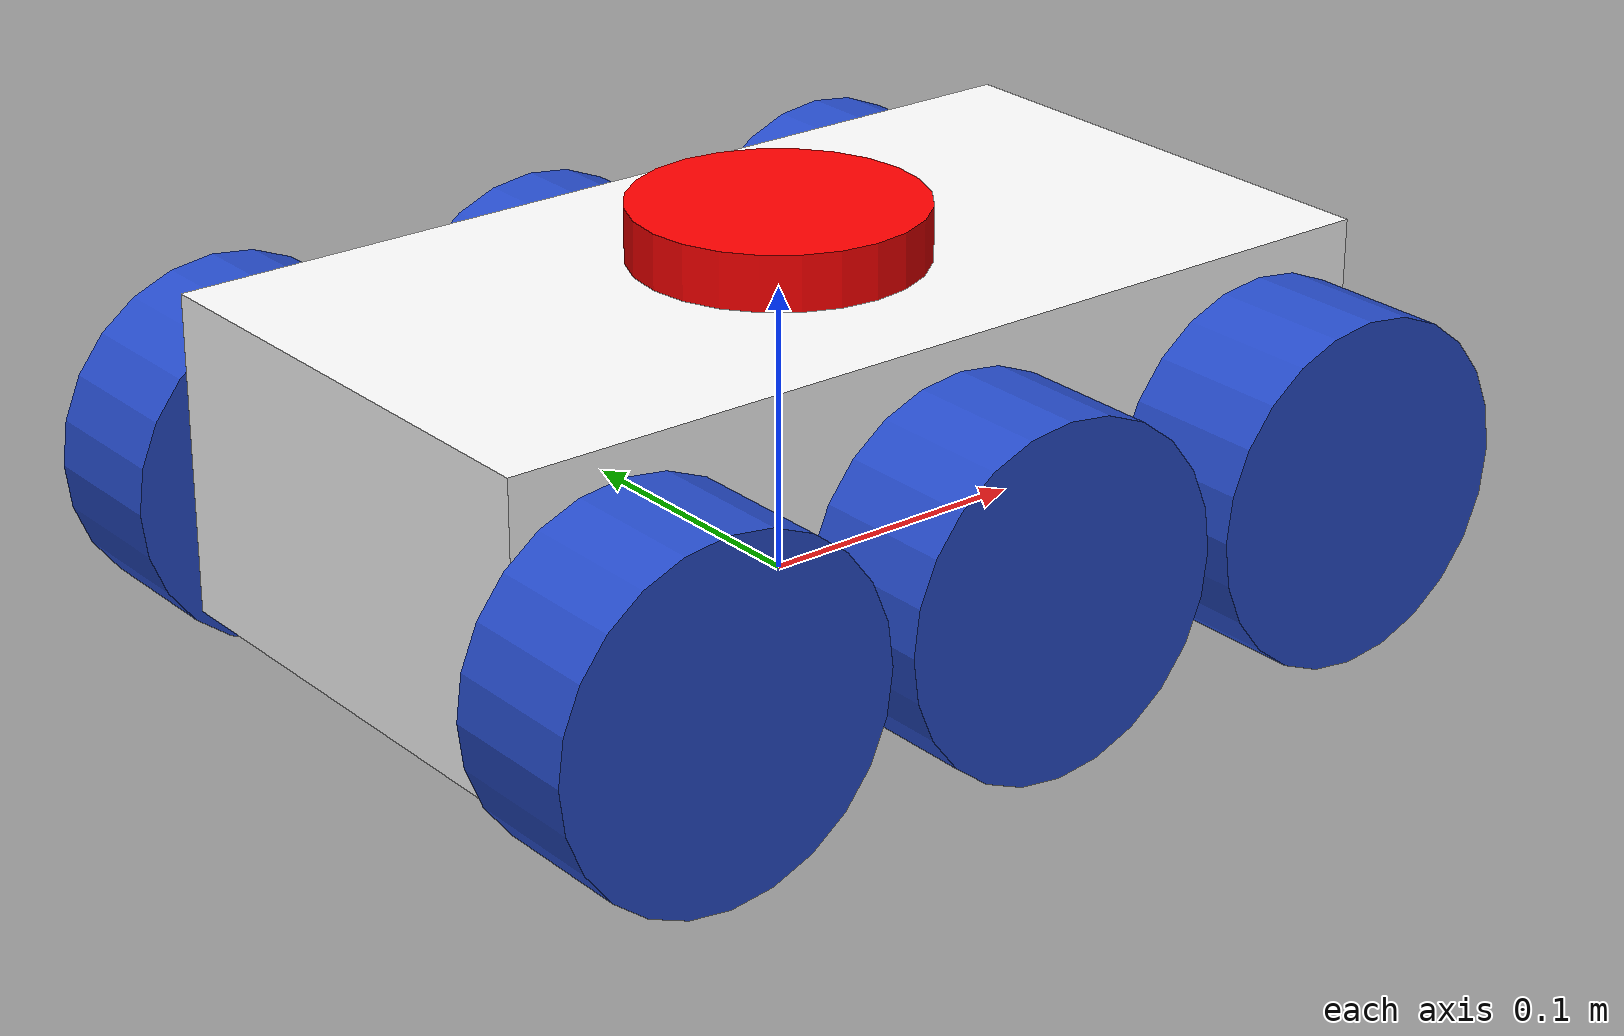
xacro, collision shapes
<?xml version="1.0"?>
<robot xmlns:xacro="http://www.ros.org/wiki/xacro"  name="robot">

    <xacro:arg name="use_ros2_control" default="true"/>
    <xacro:arg name="sim_mode" default="false"/>

    <xacro:include filename="robot_core.xacro" />

    <xacro:if value="$(arg use_ros2_control)">
        <xacro:include filename="ros2_control.xacro" />
    </xacro:if>

    <xacro:include filename="lidar.xacro" />
    <xacro:include filename="depth_camera.xacro" />
</robot>

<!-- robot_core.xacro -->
<robot xmlns:xacro="http://www.ros.org/wiki/xacro" >

    <xacro:include filename="inertial_macros.xacro"/>
    <xacro:property name="sum_mass" value="20.0"/>
    <xacro:property name="chassis_mass" value="17.0"/>
    <xacro:property name="track_mass" value="3"/>
    <xacro:property name="wheel_mass" value="${track_mass/3}"/>

    <xacro:property name="min_depth" value="0.001"/>
    <xacro:property name="mu1" value="0.7"/>
    <xacro:property name="mu2" value="0.7"/>
    <xacro:property name="kp" value="1000000"/>

<!-- MATERIALS -->

    <material name="white">
        <color rgba="1 1 1 1" />
    </material>

    <material name="orange">
        <color rgba="1 0.3 0.1 1"/>
    </material>

    <material name="blue">
        <color rgba="0.2 0.2 1 1"/>
    </material>

    <material name="black">
        <color rgba="0 0 0 1"/>
    </material>

    <material name="red">
        <color rgba="1 0 0 1"/>
    </material>

<!-- BASE LINK -->

    <link name="base_link">

    </link>

<!-- BASE_FOOTPRINT LINK -->

    <joint name="base_footprint_joint" type="fixed">
        <parent link="base_link"/>
        <child link="base_footprint"/>
        <origin xyz="0 0 0" rpy="0 0 0"/>
    </joint>

    <link name="base_footprint">
    </link>

<!-- CHASSIS LINK -->

    <joint name="chassis_joint" type="fixed">
        <parent link="base_link"/>
        <child link="chassis"/>
        <origin xyz="0 0 0" rpy="0 0 0"/>
    </joint>

    <link name="chassis">
        <visual>
            <origin xyz="0 0 0" rpy="0 0 ${pi}"/>
            <geometry>
                <mesh filename="file://$(find test_bot)/meshes/2-Chassis.stl" />
            </geometry>
            <material name="white"/>
        </visual>
        <collision>
            <origin xyz="0 0 0.0555"/>
            <geometry>
                <box size="0.336 0.18 0.111"/>
            </geometry>
        </collision>
        <xacro:inertial_box mass="${chassis_mass}" x="0.336" y="0.18" z="0.111">
            <origin xyz="0 0 0.0555" rpy="0 0 0"/>
        </xacro:inertial_box>
    </link>

    <gazebo reference="chassis">
        <material>Gazebo/White</material>
    </gazebo>

<!-- LEFT WHEEL 1 LINK -->

    <joint name="left_wheel1_joint" type="continuous">
        <parent link="base_link"/>
        <child link="left_wheel1"/>
        <origin xyz="0.128 0.115 0.04" rpy="-${pi/2} 0 0" />
        <axis xyz="0 0 1"/>
    </joint>

    <link name="left_wheel1">
        <collision>
            <geometry>
                <cylinder radius="0.06" length="0.05"/>
            </geometry>
        </collision>
        <xacro:inertial_cylinder mass="${wheel_mass}" radius="0.06" length="0.05">
            <origin xyz="0 0 0" rpy="0 0 0"/>
        </xacro:inertial_cylinder>
    </link>

    <gazebo reference="left_wheel1">
        <material>Gazebo/Blue</material>
        <min_depth value="${min_depth}"></min_depth>
        <mu1 value="${mu1}"></mu1>
        <mu2 value="${mu2}"></mu2>
        <kp value="${kp}"></kp>

    </gazebo>

<!-- LEFT WHEEL 2 LINK -->

    <joint name="left_wheel2_joint" type="continuous">
        <parent link="base_link"/>
        <child link="left_wheel2"/>
        <origin xyz="0 0.115 0.04" rpy="-${pi/2} 0 0" />
        <axis xyz="0 0 1"/>
    </joint>

    <link name="left_wheel2">
        <collision>
            <geometry>
                <cylinder radius="0.06" length="0.05"/>
            </geometry>
        </collision>
        <xacro:inertial_cylinder mass="${wheel_mass}" length="0.05" radius="0.06">
            <origin xyz="0 0 0" rpy="0 0 0"/>
        </xacro:inertial_cylinder>
    </link>

    <gazebo reference="left_wheel2">
        <material>Gazebo/Blue</material>

        <min_depth value="${min_depth}"></min_depth>
        <mu1 value="${mu1}"></mu1>
        <mu2 value="${mu2}"></mu2>
        <kp value="${kp}"></kp>

    </gazebo>

<!-- LEFT WHEEL 3 LINK -->

    <joint name="left_wheel3_joint" type="continuous">
        <parent link="base_link"/>
        <child link="left_wheel3"/>
        <origin xyz="-0.128 0.115 0.04" rpy="-${pi/2} 0 0" />
        <axis xyz="0 0 1"/>
    </joint>

    <link name="left_wheel3">
        <collision>
            <geometry>
                <cylinder radius="0.06" length="0.05"/>
            </geometry>
        </collision>
        <xacro:inertial_cylinder mass="${wheel_mass}" length="0.05" radius="0.06">
            <origin xyz="0 0 0" rpy="0 0 0"/>
        </xacro:inertial_cylinder>
    </link>

    <gazebo reference="left_wheel3">
        <material>Gazebo/Blue</material>

        <min_depth value="${min_depth}"></min_depth>
        <mu1 value="${mu1}"></mu1>
        <mu2 value="${mu2}"></mu2>
        <kp value="${kp}"></kp>

    </gazebo>

<!-- RIGHT WHEEL 1 LINK -->

    <joint name="right_wheel1_joint" type="continuous">
        <parent link="base_link"/>
        <child link="right_wheel1"/>
        <origin xyz="0.128 -0.115 0.04" rpy="-${pi/2} 0 0" />
        <axis xyz="0 0 1"/>
    </joint>

    <link name="right_wheel1">
        <collision>
            <geometry>
                <cylinder radius="0.06" length="0.05"/>
            </geometry>
        </collision>
        <xacro:inertial_cylinder mass="${wheel_mass}" length="0.05" radius="0.06">
            <origin xyz="0 0 0" rpy="0 0 0"/>
        </xacro:inertial_cylinder>
    </link>

    <gazebo reference="right_wheel1">
        <material>Gazebo/Blue</material>

        <min_depth value="${min_depth}"></min_depth>
        <mu1 value="${mu1}"></mu1>
        <mu2 value="${mu2}"></mu2>
        <kp value="${kp}"></kp>

    </gazebo>

<!-- RIGHT WHEEL 2 LINK -->

    <joint name="right_wheel2_joint" type="continuous">
        <parent link="base_link"/>
        <child link="right_wheel2"/>
        <origin xyz="0 -0.115 0.04" rpy="-${pi/2} 0 0" />
        <axis xyz="0 0 1"/>
    </joint>

    <link name="right_wheel2">
        <collision>
            <geometry>
                <cylinder radius="0.06" length="0.05"/>
            </geometry>
        </collision>

        <xacro:inertial_cylinder mass="${wheel_mass}" length="0.05" radius="0.06">
            <origin xyz="0 0 0" rpy="0 0 0"/>
        </xacro:inertial_cylinder>
    </link>

    <gazebo reference="right_wheel2">
        <material>Gazebo/Blue</material>

        <min_depth value="${min_depth}"></min_depth>
        <mu1 value="${mu1}"></mu1>
        <mu2 value="${mu2}"></mu2>
        <kp value="${kp}"></kp>

    </gazebo>

<!-- RIGHT WHEEL 3 LINK -->

    <joint name="right_wheel3_joint" type="continuous">
        <parent link="base_link"/>
        <child link="right_wheel3"/>
        <origin xyz="-0.128 -0.115 0.04" rpy="-${pi/2} 0 0" />
        <axis xyz="0 0 1"/>
    </joint>

    <link name="right_wheel3">
        <collision>
            <geometry>
                <cylinder radius="0.06" length="0.05"/>
            </geometry>
        </collision>

        <xacro:inertial_cylinder mass="${wheel_mass}" length="0.05" radius="0.06">
           <origin xyz="0 0 0" rpy="0 0 0"/>
        </xacro:inertial_cylinder>
    </link>

    <gazebo reference="right_wheel3">
        <material>Gazebo/Blue</material>

        <min_depth value="${min_depth}"></min_depth>
        <mu1 value="${mu1}"></mu1>
        <mu2 value="${mu2}"></mu2>
        <kp value="${kp}"></kp>

    </gazebo>

</robot>

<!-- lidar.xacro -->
<robot xmlns:xacro="http://www.ros.org/wiki/xacro" >

    <joint name="laser_joint" type="fixed">
        <parent link="chassis"/>
        <child link="laser_frame"/>
        <origin xyz="0 0 0.11" rpy="0 0 0"/>
    </joint>

    <link name="laser_frame">
        <visual>
            <geometry>
                <cylinder radius="0.05" length="0.04"/>
            </geometry>
            <material name="red"/>
        </visual>
        <collision>
            <geometry>
                <cylinder radius="0.05" length="0.04"/>
            </geometry>
        </collision>
        <xacro:inertial_cylinder mass="0.1" length="0.04" radius="0.05">
            <origin xyz="0 0 0" rpy="0 0 0"/>
        </xacro:inertial_cylinder>
    </link>

    <gazebo reference="laser_frame">
        <material>Gazebo/Red</material>

        <sensor name="laser" type="ray">
            <pose> 0 0 0 0 0 3.14159 </pose>
            <visualize>true</visualize>
            <update_rate>100</update_rate>
            <ray>
                <scan>
                    <horizontal>
                        <samples>360</samples>
                        <min_angle>-3.14</min_angle>
                        <max_angle>3.14</max_angle>
                    </horizontal>
                </scan>
                <range>
                    <min>0.3</min>
                    <max>12</max>
                </range>
            </ray>
            <plugin name="laser_controller" filename="libgazebo_ros_ray_sensor.so">
                <ros>
                    <argument>~/out:=scan</argument>
                </ros>
                <output_type>sensor_msgs/LaserScan</output_type>
                <frame_name>laser_frame</frame_name>
            </plugin>
        </sensor>
    </gazebo>

</robot>

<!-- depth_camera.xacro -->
<robot xmlns:xacro="http://www.ros.org/wiki/xacro" >

    <joint name="camera_joint" type="fixed">
        <parent link="chassis"/>
        <child link="camera_link"/>
        <origin xyz="0.05 0 0.11" rpy="0 0 0"/>
    </joint>

    <link name="camera_link">
        <visual>
            <geometry>
                <box size="0.010 0.03 0.03"/>
            </geometry>
            <material name="red"/>
        </visual>
    </link>

    <joint name="camera_optical_joint" type="fixed">
        <parent link="camera_link"/>
        <child link="camera_link_optical"/>
        <origin xyz="0 0 0" rpy="${-pi/2} 0 ${-pi/2}"/>
    </joint>

    <link name="camera_link_optical"></link>

    <gazebo reference="camera_link">
        <material>Gazebo/Red</material>

        <sensor name="camera" type="depth">
            <pose> 0 0 0 0 0 0 </pose>
            <visualize>true</visualize>
            <update_rate>10</update_rate>
            <camera>
                <horizontal_fov>1.089</horizontal_fov>
                <image>
                    <format>B8G8R8</format>
                    <width>640</width>
                    <height>480</height>
                </image>
                <clip>
                    <near>0.05</near>
                    <far>8.0</far>
                </clip>
            </camera>
            <plugin name="camera_controller" filename="libgazebo_ros_camera.so">
                <frame_name>camera_link_optical</frame_name>
                <min_depth>0.1</min_depth>
                <max_depth>100.0</max_depth>
            </plugin>
        </sensor>
    </gazebo>

</robot>
